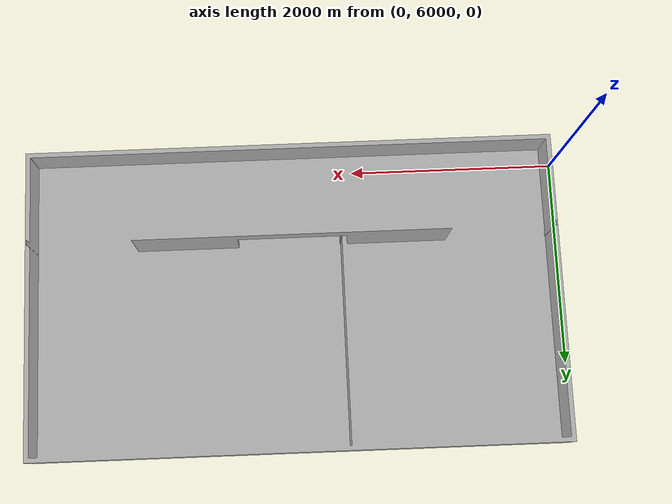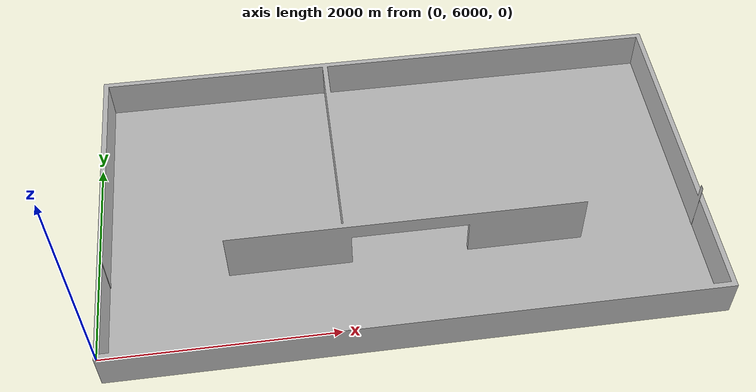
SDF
<sdf version="1.4">
 <world name="default">
  <light name="sun" type="directional">
   <pose>0 0 10 0 -0 0</pose>
   <diffuse>0.8 0.8 0.8 1</diffuse>
   <specular>0.2 0.2 0.2 1</specular>
   <attenuation>
    <range>1000</range>
    <constant>0.9</constant>
    <linear>0.01</linear>
    <quadratic>0.001</quadratic>
   </attenuation>
   <direction>0.5 0.1 -0.9</direction>
  </light>
  <scene><ambient>0.4 0.4 0.4 1</ambient><background>0.7 0.7 0.7 1</background><shadows>1</shadows></scene>
  <physics type="ode">
   <max_step_size>0.01</max_step_size>
   <real_time_factor>1</real_time_factor>
   <real_time_update_rate>100</real_time_update_rate>
   <gravity>0 0 -9.8</gravity>
  </physics>
  <model name="ATLAS">
   <link name="link">
    <pose>-1 -1 -1 0 0 0</pose>
    <collision name="collision">
     <geometry>
      <mesh>
       <uri>/home/pim/ITP_project/BIM models/test_setup/simple_room_v3/simple_room_v3_fixed.STL</uri>
       <scale>1 1 1</scale>
      </mesh>
     </geometry>
    </collision>
    <visual name="visual">
     <geometry>
      <mesh>
       <uri>/home/pim/ITP_project/BIM models/test_setup/simple_room_v3/simple_room_v3_fixed.STL</uri>
       <scale>1 1 1</scale>
      </mesh>
     </geometry>
    </visual>
    <velocity_decay><linear>0</linear><angular>0</angular></velocity_decay>
    <inertial>
     <inertia><ixx>1</ixx><ixy>0</ixy><ixz>0</ixz><iyy>1</iyy><iyz>0</iyz><izz>1</izz></inertia>
     <mass>1</mass>
    </inertial>
   </link>
   <static>1</static>
  </model>
 </world>
</sdf>
